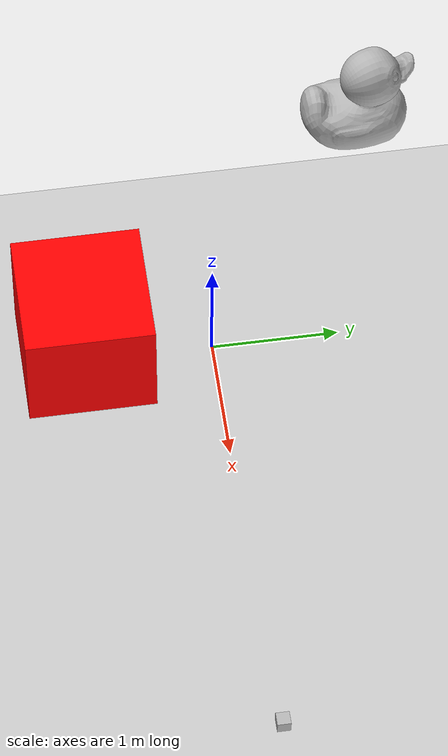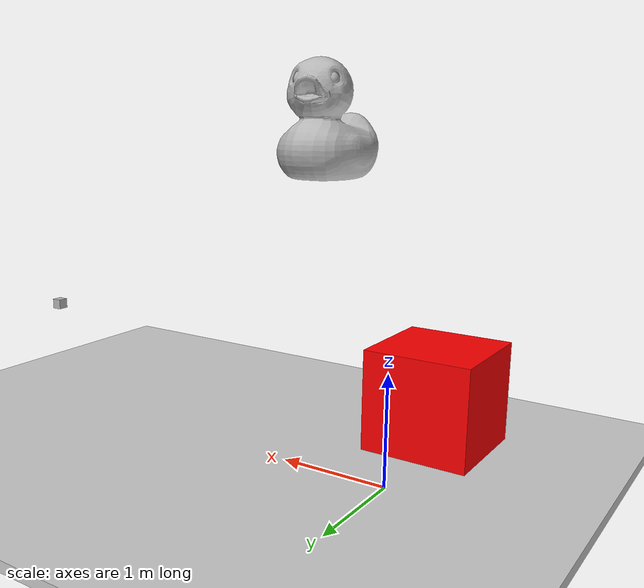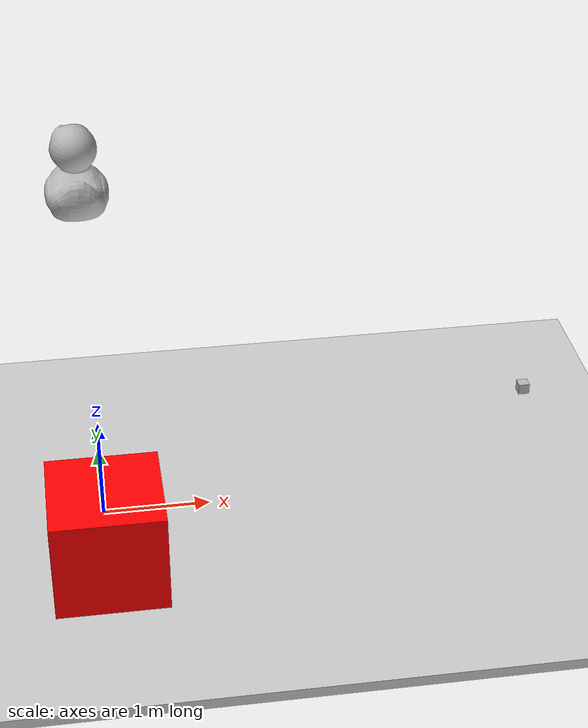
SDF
<?xml version="1.0" ?>
<!--
  Note: For now, this file must be loaded from ign-gazebo's root folder so the
  mesh's relative path is correct.

  You can visualize lidar messages using:
    ign topic -e -t /lidar
-->
<sdf version="1.6">
  <world name="camera_sensor">
    <physics name="1ms" type="ode">
      <max_step_size>0.001</max_step_size>
      <real_time_factor>1.0</real_time_factor>
    </physics>
    <plugin
      filename="libignition-gazebo-physics-system.so"
      name="ignition::gazebo::systems::v0::Physics">
    </plugin>
    <plugin
      filename="libignition-gazebo-sensors-system.so"
      name="ignition::gazebo::systems::v0::Sensors">
      <render_engine>ogre2</render_engine>
    </plugin>
    <plugin
      filename="libignition-gazebo-systems.so"
      name="ignition::gazebo::systems::v0::SceneBroadcaster">
    </plugin>

    <gui fullscreen="0">

      <!-- 3D scene -->
      <plugin filename="Scene3D" name="3D View">
        <ignition-gui>
          <title>3D View</title>
          <property type="bool" key="showTitleBar">false</property>
          <property type="string" key="state">docked</property>
        </ignition-gui>

        <engine>ogre2</engine>
        <scene>scene</scene>
        <ambient_light>0.4 0.4 0.4</ambient_light>
        <background_color>0.8 0.8 0.8</background_color>
        <camera_pose>-6 0 6 0 0.5 0</camera_pose>
        <service>/world/camera_sensor/scene/info</service>
        <pose_topic>/world/camera_sensor/pose/info</pose_topic>
      </plugin>

      <!-- World control -->
      <plugin filename="WorldControl" name="World control">
        <ignition-gui>
          <title>World control</title>
          <property type="bool" key="showTitleBar">false</property>
          <property type="bool" key="resizable">false</property>
          <property type="double" key="height">72</property>
          <property type="double" key="width">121</property>
          <property type="double" key="z">1</property>

          <property type="string" key="state">floating</property>
          <anchors target="3D View">
            <line own="left" target="left"/>
            <line own="bottom" target="bottom"/>
          </anchors>
        </ignition-gui>

        <play_pause>true</play_pause>
        <step>true</step>
        <start_paused>true</start_paused>
        <service>/world/camera_sensor/control</service>
        <stats_topic>/world/camera_sensor/stats</stats_topic>

      </plugin>

      <!-- World statistics -->
      <plugin filename="WorldStats" name="World stats">
        <ignition-gui>
          <title>World stats</title>
          <property type="bool" key="showTitleBar">false</property>
          <property type="bool" key="resizable">false</property>
          <property type="double" key="height">110</property>
          <property type="double" key="width">290</property>
          <property type="double" key="z">1</property>

          <property type="string" key="state">floating</property>
          <anchors target="3D View">
            <line own="right" target="right"/>
            <line own="bottom" target="bottom"/>
          </anchors>
        </ignition-gui>

        <sim_time>true</sim_time>
        <real_time>true</real_time>
        <real_time_factor>true</real_time_factor>
        <iterations>true</iterations>
        <topic>/world/camera_sensor/stats</topic>
      </plugin>

      <plugin filename="ImageDisplay" name="Image Display">
        <ignition-gui>
          <property key="state" type="string">docked</property>
        </ignition-gui>
      </plugin>
    </gui>

    <light type="directional" name="sun">
      <cast_shadows>true</cast_shadows>
      <pose>0 0 10 0 0 0</pose>
      <diffuse>0.8 0.8 0.8 1</diffuse>
      <specular>0.2 0.2 0.2 1</specular>
      <attenuation>
        <range>1000</range>
        <constant>0.9</constant>
        <linear>0.01</linear>
        <quadratic>0.001</quadratic>
      </attenuation>
      <direction>-0.5 0.1 -0.9</direction>
    </light>

    <model name="ground_plane">
      <static>true</static>
      <link name="link">
        <collision name="collision">
          <geometry>
            <box>
              <size>20 20 0.1</size>
            </box>
          </geometry>
        </collision>
        <visual name="visual">
          <geometry>
            <box>
              <size>20 20 0.1</size>
            </box>
          </geometry>
          <material>
            <ambient>0.8 0.8 0.8 1</ambient>
            <diffuse>0.8 0.8 0.8 1</diffuse>
            <specular>0.8 0.8 0.8 1</specular>
            <emissive>0.8 0.8 0.8 1</emissive>
          </material>
        </visual>
      </link>
    </model>

    <model name="box">
      <pose>0 -1 0.5 0 0 0</pose>
      <link name="box_link">
        <inertial>
          <inertia>
            <ixx>1</ixx>
            <ixy>0</ixy>
            <ixz>0</ixz>
            <iyy>1</iyy>
            <iyz>0</iyz>
            <izz>1</izz>
          </inertia>
          <mass>1.0</mass>
        </inertial>
        <collision name="box_collision">
          <geometry>
            <box>
              <size>1 1 1</size>
            </box>
          </geometry>
        </collision>

        <visual name="box_visual">
          <geometry>
            <box>
              <size>1 1 1</size>
            </box>
          </geometry>
          <material>
            <ambient>1 0 0 1</ambient>
            <diffuse>1 0 0 1</diffuse>
            <specular>1 0 0 1</specular>
            <emissive>1 0 0 1</emissive>
          </material>
        </visual>
      </link>
    </model>

    <model name="camera">
      <pose>4 0 1.0 0 0.0 3.14</pose>
      <link name="link">
        <pose>0.05 0.05 0.05 0 0 0</pose>
        <inertial>
          <mass>0.1</mass>
          <inertia>
            <ixx>0.000166667</ixx>
            <iyy>0.000166667</iyy>
            <izz>0.000166667</izz>
          </inertia>
        </inertial>
        <collision name="collision">
          <geometry>
            <box>
              <size>0.1 0.1 0.1</size>
            </box>
          </geometry>
        </collision>
        <visual name="visual">
          <geometry>
            <box>
              <size>0.1 0.1 0.1</size>
            </box>
          </geometry>
        </visual>
        <sensor name="camera" type="camera">
          <camera>
            <horizontal_fov>1.047</horizontal_fov>
            <image>
              <width>320</width>
              <height>240</height>
            </image>
            <clip>
              <near>0.1</near>
              <far>100</far>
            </clip>
          </camera>
          <always_on>1</always_on>
          <update_rate>30</update_rate>
          <visualize>true</visualize>
          <topic>camera</topic>
        </sensor>

        <sensor name='gpu_lidar' type='gpu_lidar'>"
          <topic>lidar</topic>
          <updateRate>10</updateRate>
          <ray>
            <scan>
              <horizontal>
                <samples>640</samples>
                <resolution>1</resolution>
                <min_angle>-1.396263</min_angle>
                <max_angle>1.396263</max_angle>
              </horizontal>
              <vertical>
                <samples>1</samples>
                <resolution>0.01</resolution>
                <min_angle>0</min_angle>
                <max_angle>0</max_angle>
              </vertical>
            </scan>
            <range>
              <min>0.08</min>
              <max>10.0</max>
              <resolution>0.01</resolution>
            </range>
          </ray>
          <alwaysOn>1</alwaysOn>
          <visualize>true</visualize>
        </sensor>
      </link>

      <static>true</static>
    </model>

    <model name="duck1">
      <pose>0 1 3 0.0 0.0 1.57</pose>
      <link name="duck_link">
        <inertial>
          <inertia>
            <ixx>3.92</ixx>
            <ixy>0</ixy>
            <ixz>0</ixz>
            <iyy>3.92</iyy>
            <iyz>0</iyz>
            <izz>3.92</izz>
          </inertia>
          <mass>39</mass>
        </inertial>
        <collision name="duck_collision">
          <pose>0 0 -0.4 1.57 0.0 0.0</pose>
          <geometry>
            <mesh>
              <scale>0.5 0.5 0.5</scale>
              <uri>file://test/media/duck.dae</uri>
            </mesh>
          </geometry>
        </collision>

        <visual name="duck_visual">
          <pose>0 0 -0.4 1.57 0.0 0.0</pose>
          <geometry>
            <mesh>
              <scale>0.5 0.5 0.5</scale>
              <uri>file://test/media/duck.dae</uri>
            </mesh>
          </geometry>
        </visual>
      </link>
    </model>

  </world>
</sdf>
